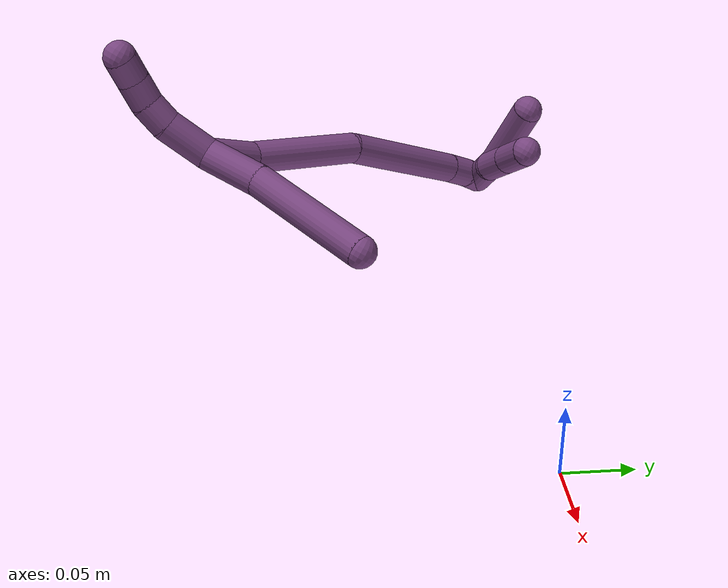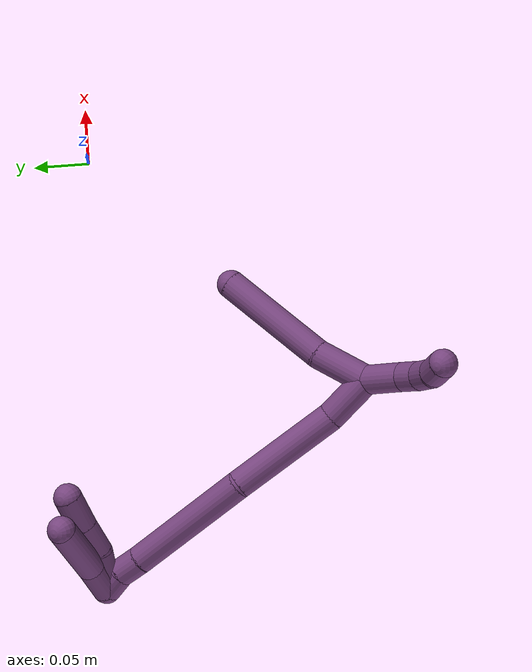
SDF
<sdf version="1.7">
 <world name="default">
  <model name="20">
   <static>0</static>
   <link name="20">
    <collision name="collision-cylinder-e_1_2_8">
     <pose>0.015801 0.018008 0.001424 -1.49191 0.718678 -0.668223</pose>
     <geometry><cylinder><radius>0.0125</radius><length>0.048</length></cylinder></geometry>
     <surface>
      <friction><ode><mu>1.16</mu><mu2>1.16</mu2><slip1>0</slip1><slip2>0</slip2></ode></friction>
      <contact><ode><kp>1e+06</kp><kd>1</kd><max_vel>0</max_vel><min_depth>0.001</min_depth></ode></contact>
     </surface>
    </collision>
    <visual name="visual-cylinder-e_1_2_8">
     <pose>0.015801 0.018008 0.001424 -1.49191 0.718678 -0.668223</pose>
     <geometry><cylinder><radius>0.0125</radius><length>0.048</length></cylinder></geometry>
     <material><ambient>0.478431 0.278431 0.509804 1</ambient></material>
    </visual>
    <collision name="collision-cylinder-e_2_8_6">
     <pose>0.070353 0.069094 0.000553 -1.64003 0.863026 -0.916848</pose>
     <geometry><cylinder><radius>0.0125</radius><length>0.102</length></cylinder></geometry>
     <surface>
      <friction><ode><mu>1.16</mu><mu2>1.16</mu2><slip1>0</slip1><slip2>0</slip2></ode></friction>
      <contact><ode><kp>1e+06</kp><kd>1</kd><max_vel>0</max_vel><min_depth>0.001</min_depth></ode></contact>
     </surface>
    </collision>
    <visual name="visual-cylinder-e_2_8_6">
     <pose>0.070353 0.069094 0.000553 -1.64003 0.863026 -0.916848</pose>
     <geometry><cylinder><radius>0.0125</radius><length>0.102</length></cylinder></geometry>
     <material><ambient>0.478431 0.278431 0.509804 1</ambient></material>
    </visual>
    <collision name="collision-cylinder-e_1_2_9">
     <pose>-0.002385 -0.018614 0.00191 1.46852 -0.126776 -0.114458</pose>
     <geometry><cylinder><radius>0.0125</radius><length>0.037726</length></cylinder></geometry>
     <surface>
      <friction><ode><mu>1.16</mu><mu2>1.16</mu2><slip1>0</slip1><slip2>0</slip2></ode></friction>
      <contact><ode><kp>1e+06</kp><kd>1</kd><max_vel>0</max_vel><min_depth>0.001</min_depth></ode></contact>
     </surface>
    </collision>
    <visual name="visual-cylinder-e_1_2_9">
     <pose>-0.002385 -0.018614 0.00191 1.46852 -0.126776 -0.114458</pose>
     <geometry><cylinder><radius>0.0125</radius><length>0.037726</length></cylinder></geometry>
     <material><ambient>0.478431 0.278431 0.509804 1</ambient></material>
    </visual>
    <collision name="collision-cylinder-e_2_9_10">
     <pose>-0.005791 -0.0471 0.007149 1.24565 -0.097682 -0.070181</pose>
     <geometry><cylinder><radius>0.0125</radius><length>0.020936</length></cylinder></geometry>
     <surface>
      <friction><ode><mu>1.16</mu><mu2>1.16</mu2><slip1>0</slip1><slip2>0</slip2></ode></friction>
      <contact><ode><kp>1e+06</kp><kd>1</kd><max_vel>0</max_vel><min_depth>0.001</min_depth></ode></contact>
     </surface>
    </collision>
    <visual name="visual-cylinder-e_2_9_10">
     <pose>-0.005791 -0.0471 0.007149 1.24565 -0.097682 -0.070181</pose>
     <geometry><cylinder><radius>0.0125</radius><length>0.020936</length></cylinder></geometry>
     <material><ambient>0.478431 0.278431 0.509804 1</ambient></material>
    </visual>
    <collision name="collision-cylinder-e_3_10_11">
     <pose>-0.006506 -0.065847 0.015722 1.03703 0.029697 0.016945</pose>
     <geometry><cylinder><radius>0.0125</radius><length>0.020626</length></cylinder></geometry>
     <surface>
      <friction><ode><mu>1.16</mu><mu2>1.16</mu2><slip1>0</slip1><slip2>0</slip2></ode></friction>
      <contact><ode><kp>1e+06</kp><kd>1</kd><max_vel>0</max_vel><min_depth>0.001</min_depth></ode></contact>
     </surface>
    </collision>
    <visual name="visual-cylinder-e_3_10_11">
     <pose>-0.006506 -0.065847 0.015722 1.03703 0.029697 0.016945</pose>
     <geometry><cylinder><radius>0.0125</radius><length>0.020626</length></cylinder></geometry>
     <material><ambient>0.478431 0.278431 0.509804 1</ambient></material>
    </visual>
    <collision name="collision-cylinder-e_4_11_5">
     <pose>-0.002924 -0.083244 0.025853 1.05023 0.32179 0.187511</pose>
     <geometry><cylinder><radius>0.0125</radius><length>0.020712</length></cylinder></geometry>
     <surface>
      <friction><ode><mu>1.16</mu><mu2>1.16</mu2><slip1>0</slip1><slip2>0</slip2></ode></friction>
      <contact><ode><kp>1e+06</kp><kd>1</kd><max_vel>0</max_vel><min_depth>0.001</min_depth></ode></contact>
     </surface>
    </collision>
    <visual name="visual-cylinder-e_4_11_5">
     <pose>-0.002924 -0.083244 0.025853 1.05023 0.32179 0.187511</pose>
     <geometry><cylinder><radius>0.0125</radius><length>0.020712</length></cylinder></geometry>
     <material><ambient>0.478431 0.278431 0.509804 1</ambient></material>
    </visual>
    <collision name="collision-cylinder-e_1_2_12">
     <pose>-0.010869 0.018323 0.006206 -1.24421 -0.511898 0.370993</pose>
     <geometry><cylinder><radius>0.0125</radius><length>0.044379</length></cylinder></geometry>
     <surface>
      <friction><ode><mu>1.16</mu><mu2>1.16</mu2><slip1>0</slip1><slip2>0</slip2></ode></friction>
      <contact><ode><kp>1e+06</kp><kd>1</kd><max_vel>0</max_vel><min_depth>0.001</min_depth></ode></contact>
     </surface>
    </collision>
    <visual name="visual-cylinder-e_1_2_12">
     <pose>-0.010869 0.018323 0.006206 -1.24421 -0.511898 0.370993</pose>
     <geometry><cylinder><radius>0.0125</radius><length>0.044379</length></cylinder></geometry>
     <material><ambient>0.478431 0.278431 0.509804 1</ambient></material>
    </visual>
    <collision name="collision-cylinder-e_2_12_13">
     <pose>-0.038218 0.076751 0.035364 -1.051 -0.342573 0.199952</pose>
     <geometry><cylinder><radius>0.0125</radius><length>0.098119</length></cylinder></geometry>
     <surface>
      <friction><ode><mu>1.16</mu><mu2>1.16</mu2><slip1>0</slip1><slip2>0</slip2></ode></friction>
      <contact><ode><kp>1e+06</kp><kd>1</kd><max_vel>0</max_vel><min_depth>0.001</min_depth></ode></contact>
     </surface>
    </collision>
    <visual name="visual-cylinder-e_2_12_13">
     <pose>-0.038218 0.076751 0.035364 -1.051 -0.342573 0.199952</pose>
     <geometry><cylinder><radius>0.0125</radius><length>0.098119</length></cylinder></geometry>
     <material><ambient>0.478431 0.278431 0.509804 1</ambient></material>
    </visual>
    <collision name="collision-cylinder-e_3_13_14">
     <pose>-0.074939 0.16813 0.072118 -1.30784 -0.364195 0.280398</pose>
     <geometry><cylinder><radius>0.0125</radius><length>0.11365</length></cylinder></geometry>
     <surface>
      <friction><ode><mu>1.16</mu><mu2>1.16</mu2><slip1>0</slip1><slip2>0</slip2></ode></friction>
      <contact><ode><kp>1e+06</kp><kd>1</kd><max_vel>0</max_vel><min_depth>0.001</min_depth></ode></contact>
     </surface>
    </collision>
    <visual name="visual-cylinder-e_3_13_14">
     <pose>-0.074939 0.16813 0.072118 -1.30784 -0.364195 0.280398</pose>
     <geometry><cylinder><radius>0.0125</radius><length>0.11365</length></cylinder></geometry>
     <material><ambient>0.478431 0.278431 0.509804 1</ambient></material>
    </visual>
    <collision name="collision-cylinder-e_4_14_15">
     <pose>-0.098731 0.229912 0.088255 -1.35221 -0.318634 0.256392</pose>
     <geometry><cylinder><radius>0.0125</radius><length>0.022674</length></cylinder></geometry>
     <surface>
      <friction><ode><mu>1.16</mu><mu2>1.16</mu2><slip1>0</slip1><slip2>0</slip2></ode></friction>
      <contact><ode><kp>1e+06</kp><kd>1</kd><max_vel>0</max_vel><min_depth>0.001</min_depth></ode></contact>
     </surface>
    </collision>
    <visual name="visual-cylinder-e_4_14_15">
     <pose>-0.098731 0.229912 0.088255 -1.35221 -0.318634 0.256392</pose>
     <geometry><cylinder><radius>0.0125</radius><length>0.022674</length></cylinder></geometry>
     <material><ambient>0.478431 0.278431 0.509804 1</ambient></material>
    </visual>
    <collision name="collision-cylinder-e_5_15_1">
     <pose>-0.107939 0.249334 0.091442 -1.47541 -0.563488 0.514486</pose>
     <geometry><cylinder><radius>0.0125</radius><length>0.021178</length></cylinder></geometry>
     <surface>
      <friction><ode><mu>1.16</mu><mu2>1.16</mu2><slip1>0</slip1><slip2>0</slip2></ode></friction>
      <contact><ode><kp>1e+06</kp><kd>1</kd><max_vel>0</max_vel><min_depth>0.001</min_depth></ode></contact>
     </surface>
    </collision>
    <visual name="visual-cylinder-e_5_15_1">
     <pose>-0.107939 0.249334 0.091442 -1.47541 -0.563488 0.514486</pose>
     <geometry><cylinder><radius>0.0125</radius><length>0.021178</length></cylinder></geometry>
     <material><ambient>0.478431 0.278431 0.509804 1</ambient></material>
    </visual>
    <collision name="collision-cylinder-e_1_1_16">
     <pose>-0.09556 0.251792 0.098576 0.798885 1.10772 0.510721</pose>
     <geometry><cylinder><radius>0.0125</radius><length>0.040315</length></cylinder></geometry>
     <surface>
      <friction><ode><mu>1.16</mu><mu2>1.16</mu2><slip1>0</slip1><slip2>0</slip2></ode></friction>
      <contact><ode><kp>1e+06</kp><kd>1</kd><max_vel>0</max_vel><min_depth>0.001</min_depth></ode></contact>
     </surface>
    </collision>
    <visual name="visual-cylinder-e_1_1_16">
     <pose>-0.09556 0.251792 0.098576 0.798885 1.10772 0.510721</pose>
     <geometry><cylinder><radius>0.0125</radius><length>0.040315</length></cylinder></geometry>
     <material><ambient>0.478431 0.278431 0.509804 1</ambient></material>
    </visual>
    <collision name="collision-cylinder-e_2_16_17">
     <pose>-0.064525 0.244724 0.110885 0.101881 1.13457 0.064947</pose>
     <geometry><cylinder><radius>0.0125</radius><length>0.028686</length></cylinder></geometry>
     <surface>
      <friction><ode><mu>1.16</mu><mu2>1.16</mu2><slip1>0</slip1><slip2>0</slip2></ode></friction>
      <contact><ode><kp>1e+06</kp><kd>1</kd><max_vel>0</max_vel><min_depth>0.001</min_depth></ode></contact>
     </surface>
    </collision>
    <visual name="visual-cylinder-e_2_16_17">
     <pose>-0.064525 0.244724 0.110885 0.101881 1.13457 0.064947</pose>
     <geometry><cylinder><radius>0.0125</radius><length>0.028686</length></cylinder></geometry>
     <material><ambient>0.478431 0.278431 0.509804 1</ambient></material>
    </visual>
    <collision name="collision-cylinder-e_3_17_4">
     <pose>-0.037251 0.242855 0.122822 0.208912 1.17053 0.138734</pose>
     <geometry><cylinder><radius>0.0125</radius><length>0.030999</length></cylinder></geometry>
     <surface>
      <friction><ode><mu>1.16</mu><mu2>1.16</mu2><slip1>0</slip1><slip2>0</slip2></ode></friction>
      <contact><ode><kp>1e+06</kp><kd>1</kd><max_vel>0</max_vel><min_depth>0.001</min_depth></ode></contact>
     </surface>
    </collision>
    <visual name="visual-cylinder-e_3_17_4">
     <pose>-0.037251 0.242855 0.122822 0.208912 1.17053 0.138734</pose>
     <geometry><cylinder><radius>0.0125</radius><length>0.030999</length></cylinder></geometry>
     <material><ambient>0.478431 0.278431 0.509804 1</ambient></material>
    </visual>
    <collision name="collision-cylinder-e_1_1_18">
     <pose>-0.101089 0.25547 0.102233 0.27223 0.880923 0.128934</pose>
     <geometry><cylinder><radius>0.0125</radius><length>0.032426</length></cylinder></geometry>
     <surface>
      <friction><ode><mu>1.16</mu><mu2>1.16</mu2><slip1>0</slip1><slip2>0</slip2></ode></friction>
      <contact><ode><kp>1e+06</kp><kd>1</kd><max_vel>0</max_vel><min_depth>0.001</min_depth></ode></contact>
     </surface>
    </collision>
    <visual name="visual-cylinder-e_1_1_18">
     <pose>-0.101089 0.25547 0.102233 0.27223 0.880923 0.128934</pose>
     <geometry><cylinder><radius>0.0125</radius><length>0.032426</length></cylinder></geometry>
     <material><ambient>0.478431 0.278431 0.509804 1</ambient></material>
    </visual>
    <collision name="collision-cylinder-e_2_18_3">
     <pose>-0.066836 0.243489 0.136335 0.364066 0.699281 0.134031</pose>
     <geometry><cylinder><radius>0.0125</radius><length>0.067574</length></cylinder></geometry>
     <surface>
      <friction><ode><mu>1.16</mu><mu2>1.16</mu2><slip1>0</slip1><slip2>0</slip2></ode></friction>
      <contact><ode><kp>1e+06</kp><kd>1</kd><max_vel>0</max_vel><min_depth>0.001</min_depth></ode></contact>
     </surface>
    </collision>
    <visual name="visual-cylinder-e_2_18_3">
     <pose>-0.066836 0.243489 0.136335 0.364066 0.699281 0.134031</pose>
     <geometry><cylinder><radius>0.0125</radius><length>0.067574</length></cylinder></geometry>
     <material><ambient>0.478431 0.278431 0.509804 1</ambient></material>
    </visual>
    <collision name="collision-sphere-3">
     <pose>-0.045088 0.234281 0.160497 0 -0 0</pose>
     <geometry><sphere><radius>0.0125</radius></sphere></geometry>
     <surface>
      <friction><ode><mu>1.16</mu><mu2>1.16</mu2><slip1>0</slip1><slip2>0</slip2></ode></friction>
      <contact><ode><kp>1e+06</kp><kd>1</kd><max_vel>0</max_vel><min_depth>0.001</min_depth></ode></contact>
     </surface>
    </collision>
    <visual name="visual-sphere-3">
     <pose>-0.045088 0.234281 0.160497 0 -0 0</pose>
     <geometry><sphere><radius>0.0125</radius></sphere></geometry>
     <material><ambient>0.478431 0.278431 0.509804 1</ambient></material>
    </visual>
    <collision name="collision-sphere-11">
     <pose>-0.006199 -0.074721 0.020966 0 -0 0</pose>
     <geometry><sphere><radius>0.0125</radius></sphere></geometry>
     <surface>
      <friction><ode><mu>1.16</mu><mu2>1.16</mu2><slip1>0</slip1><slip2>0</slip2></ode></friction>
      <contact><ode><kp>1e+06</kp><kd>1</kd><max_vel>0</max_vel><min_depth>0.001</min_depth></ode></contact>
     </surface>
    </collision>
    <visual name="visual-sphere-11">
     <pose>-0.006199 -0.074721 0.020966 0 -0 0</pose>
     <geometry><sphere><radius>0.0125</radius></sphere></geometry>
     <material><ambient>0.478431 0.278431 0.509804 1</ambient></material>
    </visual>
    <collision name="collision-sphere-10">
     <pose>-0.006812 -0.056972 0.010477 0 -0 0</pose>
     <geometry><sphere><radius>0.0125</radius></sphere></geometry>
     <surface>
      <friction><ode><mu>1.16</mu><mu2>1.16</mu2><slip1>0</slip1><slip2>0</slip2></ode></friction>
      <contact><ode><kp>1e+06</kp><kd>1</kd><max_vel>0</max_vel><min_depth>0.001</min_depth></ode></contact>
     </surface>
    </collision>
    <visual name="visual-sphere-10">
     <pose>-0.006812 -0.056972 0.010477 0 -0 0</pose>
     <geometry><sphere><radius>0.0125</radius></sphere></geometry>
     <material><ambient>0.478431 0.278431 0.509804 1</ambient></material>
    </visual>
    <collision name="collision-sphere-6">
     <pose>0.109104 0.102172 -0.00174 0 -0 0</pose>
     <geometry><sphere><radius>0.0125</radius></sphere></geometry>
     <surface>
      <friction><ode><mu>1.16</mu><mu2>1.16</mu2><slip1>0</slip1><slip2>0</slip2></ode></friction>
      <contact><ode><kp>1e+06</kp><kd>1</kd><max_vel>0</max_vel><min_depth>0.001</min_depth></ode></contact>
     </surface>
    </collision>
    <visual name="visual-sphere-6">
     <pose>0.109104 0.102172 -0.00174 0 -0 0</pose>
     <geometry><sphere><radius>0.0125</radius></sphere></geometry>
     <material><ambient>0.478431 0.278431 0.509804 1</ambient></material>
    </visual>
    <collision name="collision-sphere-9">
     <pose>-0.00477 -0.037228 0.003821 0 -0 0</pose>
     <geometry><sphere><radius>0.0125</radius></sphere></geometry>
     <surface>
      <friction><ode><mu>1.16</mu><mu2>1.16</mu2><slip1>0</slip1><slip2>0</slip2></ode></friction>
      <contact><ode><kp>1e+06</kp><kd>1</kd><max_vel>0</max_vel><min_depth>0.001</min_depth></ode></contact>
     </surface>
    </collision>
    <visual name="visual-sphere-9">
     <pose>-0.00477 -0.037228 0.003821 0 -0 0</pose>
     <geometry><sphere><radius>0.0125</radius></sphere></geometry>
     <material><ambient>0.478431 0.278431 0.509804 1</ambient></material>
    </visual>
    <collision name="collision-sphere-2">
     <geometry><sphere><radius>0.0125</radius></sphere></geometry>
     <surface>
      <friction><ode><mu>1.16</mu><mu2>1.16</mu2><slip1>0</slip1><slip2>0</slip2></ode></friction>
      <contact><ode><kp>1e+06</kp><kd>1</kd><max_vel>0</max_vel><min_depth>0.001</min_depth></ode></contact>
     </surface>
    </collision>
    <visual name="visual-sphere-2">
     <geometry><sphere><radius>0.0125</radius></sphere></geometry>
     <material><ambient>0.478431 0.278431 0.509804 1</ambient></material>
    </visual>
    <collision name="collision-sphere-8">
     <pose>0.031603 0.036016 0.002847 0 -0 0</pose>
     <geometry><sphere><radius>0.0125</radius></sphere></geometry>
     <surface>
      <friction><ode><mu>1.16</mu><mu2>1.16</mu2><slip1>0</slip1><slip2>0</slip2></ode></friction>
      <contact><ode><kp>1e+06</kp><kd>1</kd><max_vel>0</max_vel><min_depth>0.001</min_depth></ode></contact>
     </surface>
    </collision>
    <visual name="visual-sphere-8">
     <pose>0.031603 0.036016 0.002847 0 -0 0</pose>
     <geometry><sphere><radius>0.0125</radius></sphere></geometry>
     <material><ambient>0.478431 0.278431 0.509804 1</ambient></material>
    </visual>
    <collision name="collision-sphere-5">
     <pose>0.000351 -0.091767 0.030739 0 -0 0</pose>
     <geometry><sphere><radius>0.0125</radius></sphere></geometry>
     <surface>
      <friction><ode><mu>1.16</mu><mu2>1.16</mu2><slip1>0</slip1><slip2>0</slip2></ode></friction>
      <contact><ode><kp>1e+06</kp><kd>1</kd><max_vel>0</max_vel><min_depth>0.001</min_depth></ode></contact>
     </surface>
    </collision>
    <visual name="visual-sphere-5">
     <pose>0.000351 -0.091767 0.030739 0 -0 0</pose>
     <geometry><sphere><radius>0.0125</radius></sphere></geometry>
     <material><ambient>0.478431 0.278431 0.509804 1</ambient></material>
    </visual>
    <collision name="collision-sphere-12">
     <pose>-0.021738 0.036645 0.012412 0 -0 0</pose>
     <geometry><sphere><radius>0.0125</radius></sphere></geometry>
     <surface>
      <friction><ode><mu>1.16</mu><mu2>1.16</mu2><slip1>0</slip1><slip2>0</slip2></ode></friction>
      <contact><ode><kp>1e+06</kp><kd>1</kd><max_vel>0</max_vel><min_depth>0.001</min_depth></ode></contact>
     </surface>
    </collision>
    <visual name="visual-sphere-12">
     <pose>-0.021738 0.036645 0.012412 0 -0 0</pose>
     <geometry><sphere><radius>0.0125</radius></sphere></geometry>
     <material><ambient>0.478431 0.278431 0.509804 1</ambient></material>
    </visual>
    <collision name="collision-sphere-13">
     <pose>-0.054698 0.116857 0.058316 0 -0 0</pose>
     <geometry><sphere><radius>0.0125</radius></sphere></geometry>
     <surface>
      <friction><ode><mu>1.16</mu><mu2>1.16</mu2><slip1>0</slip1><slip2>0</slip2></ode></friction>
      <contact><ode><kp>1e+06</kp><kd>1</kd><max_vel>0</max_vel><min_depth>0.001</min_depth></ode></contact>
     </surface>
    </collision>
    <visual name="visual-sphere-13">
     <pose>-0.054698 0.116857 0.058316 0 -0 0</pose>
     <geometry><sphere><radius>0.0125</radius></sphere></geometry>
     <material><ambient>0.478431 0.278431 0.509804 1</ambient></material>
    </visual>
    <collision name="collision-sphere-14">
     <pose>-0.09518 0.219402 0.08592 0 -0 0</pose>
     <geometry><sphere><radius>0.0125</radius></sphere></geometry>
     <surface>
      <friction><ode><mu>1.16</mu><mu2>1.16</mu2><slip1>0</slip1><slip2>0</slip2></ode></friction>
      <contact><ode><kp>1e+06</kp><kd>1</kd><max_vel>0</max_vel><min_depth>0.001</min_depth></ode></contact>
     </surface>
    </collision>
    <visual name="visual-sphere-14">
     <pose>-0.09518 0.219402 0.08592 0 -0 0</pose>
     <geometry><sphere><radius>0.0125</radius></sphere></geometry>
     <material><ambient>0.478431 0.278431 0.509804 1</ambient></material>
    </visual>
    <collision name="collision-sphere-15">
     <pose>-0.102283 0.240423 0.09059 0 -0 0</pose>
     <geometry><sphere><radius>0.0125</radius></sphere></geometry>
     <surface>
      <friction><ode><mu>1.16</mu><mu2>1.16</mu2><slip1>0</slip1><slip2>0</slip2></ode></friction>
      <contact><ode><kp>1e+06</kp><kd>1</kd><max_vel>0</max_vel><min_depth>0.001</min_depth></ode></contact>
     </surface>
    </collision>
    <visual name="visual-sphere-15">
     <pose>-0.102283 0.240423 0.09059 0 -0 0</pose>
     <geometry><sphere><radius>0.0125</radius></sphere></geometry>
     <material><ambient>0.478431 0.278431 0.509804 1</ambient></material>
    </visual>
    <collision name="collision-sphere-1">
     <pose>-0.113595 0.258245 0.092295 0 -0 0</pose>
     <geometry><sphere><radius>0.0125</radius></sphere></geometry>
     <surface>
      <friction><ode><mu>1.16</mu><mu2>1.16</mu2><slip1>0</slip1><slip2>0</slip2></ode></friction>
      <contact><ode><kp>1e+06</kp><kd>1</kd><max_vel>0</max_vel><min_depth>0.001</min_depth></ode></contact>
     </surface>
    </collision>
    <visual name="visual-sphere-1">
     <pose>-0.113595 0.258245 0.092295 0 -0 0</pose>
     <geometry><sphere><radius>0.0125</radius></sphere></geometry>
     <material><ambient>0.478431 0.278431 0.509804 1</ambient></material>
    </visual>
    <collision name="collision-sphere-18">
     <pose>-0.088584 0.252696 0.112172 0 -0 0</pose>
     <geometry><sphere><radius>0.0125</radius></sphere></geometry>
     <surface>
      <friction><ode><mu>1.16</mu><mu2>1.16</mu2><slip1>0</slip1><slip2>0</slip2></ode></friction>
      <contact><ode><kp>1e+06</kp><kd>1</kd><max_vel>0</max_vel><min_depth>0.001</min_depth></ode></contact>
     </surface>
    </collision>
    <visual name="visual-sphere-18">
     <pose>-0.088584 0.252696 0.112172 0 -0 0</pose>
     <geometry><sphere><radius>0.0125</radius></sphere></geometry>
     <material><ambient>0.478431 0.278431 0.509804 1</ambient></material>
    </visual>
    <collision name="collision-sphere-16">
     <pose>-0.077525 0.24534 0.104856 0 -0 0</pose>
     <geometry><sphere><radius>0.0125</radius></sphere></geometry>
     <surface>
      <friction><ode><mu>1.16</mu><mu2>1.16</mu2><slip1>0</slip1><slip2>0</slip2></ode></friction>
      <contact><ode><kp>1e+06</kp><kd>1</kd><max_vel>0</max_vel><min_depth>0.001</min_depth></ode></contact>
     </surface>
    </collision>
    <visual name="visual-sphere-16">
     <pose>-0.077525 0.24534 0.104856 0 -0 0</pose>
     <geometry><sphere><radius>0.0125</radius></sphere></geometry>
     <material><ambient>0.478431 0.278431 0.509804 1</ambient></material>
    </visual>
    <collision name="collision-sphere-17">
     <pose>-0.051525 0.244107 0.116914 0 -0 0</pose>
     <geometry><sphere><radius>0.0125</radius></sphere></geometry>
     <surface>
      <friction><ode><mu>1.16</mu><mu2>1.16</mu2><slip1>0</slip1><slip2>0</slip2></ode></friction>
      <contact><ode><kp>1e+06</kp><kd>1</kd><max_vel>0</max_vel><min_depth>0.001</min_depth></ode></contact>
     </surface>
    </collision>
    <visual name="visual-sphere-17">
     <pose>-0.051525 0.244107 0.116914 0 -0 0</pose>
     <geometry><sphere><radius>0.0125</radius></sphere></geometry>
     <material><ambient>0.478431 0.278431 0.509804 1</ambient></material>
    </visual>
    <collision name="collision-sphere-4">
     <pose>-0.022977 0.241602 0.12873 0 -0 0</pose>
     <geometry><sphere><radius>0.0125</radius></sphere></geometry>
     <surface>
      <friction><ode><mu>1.16</mu><mu2>1.16</mu2><slip1>0</slip1><slip2>0</slip2></ode></friction>
      <contact><ode><kp>1e+06</kp><kd>1</kd><max_vel>0</max_vel><min_depth>0.001</min_depth></ode></contact>
     </surface>
    </collision>
    <visual name="visual-sphere-4">
     <pose>-0.022977 0.241602 0.12873 0 -0 0</pose>
     <geometry><sphere><radius>0.0125</radius></sphere></geometry>
     <material><ambient>0.478431 0.278431 0.509804 1</ambient></material>
    </visual>
    <inertial>
     <pose>-0.03253 0.120698 0.054101 0 -0 0</pose>
     <mass>0.75</mass>
     <inertia>
      <ixx>0.000299</ixx>
      <ixy>0</ixy>
      <ixz>0</ixz>
      <iyy>0.00022</iyy>
      <iyz>0</iyz>
      <izz>-0.000254</izz>
     </inertia>
    </inertial>
   </link>
   <pose>-0.231457 -0.227537 0.136031 -0.612425 -0.190451 0.233272</pose>
  </model>
 </world>
</sdf>
